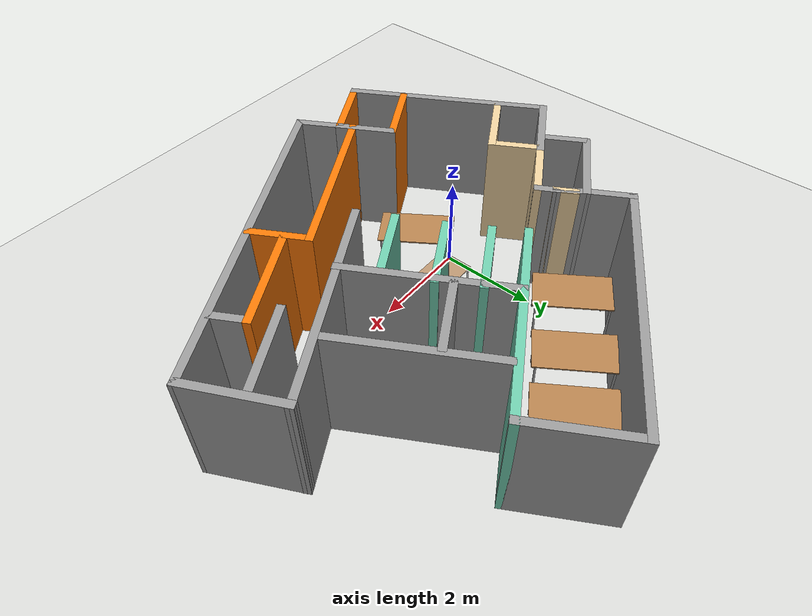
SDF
<sdf version="1.7">
 <world name="default">
  <light name="sun" type="directional">
   <pose>0 0 10 0 -0 0</pose>
   <diffuse>0.8 0.8 0.8 1</diffuse>
   <specular>0.2 0.2 0.2 1</specular>
   <attenuation>
    <range>1000</range>
    <constant>0.9</constant>
    <linear>0.01</linear>
    <quadratic>0.001</quadratic>
   </attenuation>
   <direction>-0.5 0.1 -0.9</direction>
   <spot><inner_angle>0</inner_angle><outer_angle>0</outer_angle><falloff>0</falloff></spot>
  </light>
  <model name="ground_plane">
   <static>1</static>
   <link name="link">
    <collision name="collision">
     <geometry><plane><normal>0 0 1</normal><size>100 100</size></plane></geometry>
     <surface>
      <contact><collide_bitmask>65535</collide_bitmask></contact>
      <friction><ode><mu>100</mu><mu2>50</mu2></ode></friction>
     </surface>
    </collision>
    <visual name="visual">
     <cast_shadows>0</cast_shadows>
     <geometry><plane><normal>0 0 1</normal><size>100 100</size></plane></geometry>
     <material>
      <script><uri>file://media/materials/scripts/gazebo.material</uri><name>Gazebo/Grey</name></script>
     </material>
    </visual>
   </link>
  </model>
  <gravity>0 0 -9.8</gravity>
  <magnetic_field>6e-06 2.3e-05 -4.2e-05</magnetic_field>
  <atmosphere type="adiabatic"/>
  <physics type="ode">
   <max_step_size>0.001</max_step_size>
   <real_time_factor>1</real_time_factor>
   <real_time_update_rate>1000</real_time_update_rate>
  </physics>
  <scene><ambient>0.4 0.4 0.4 1</ambient><background>0.7 0.7 0.7 1</background><shadows>1</shadows></scene>
  <spherical_coordinates>
   <surface_model>EARTH_WGS84</surface_model>
   <latitude_deg>0</latitude_deg>
   <longitude_deg>0</longitude_deg>
   <elevation>0</elevation>
   <heading_deg>0</heading_deg>
  </spherical_coordinates>
  <model name="Untitled">
   <pose>1.85566 1.13752 0 0 -0 0</pose>
   <link name="Wall_10">
    <collision name="Wall_10_Collision">
     <geometry><box><size>1.5 0.15 2.5</size></box></geometry>
     <pose>0 0 1.25 0 -0 0</pose>
    </collision>
    <visual name="Wall_10_Visual">
     <pose>0 0 1.25 0 -0 0</pose>
     <geometry><box><size>1.5 0.15 2.5</size></box></geometry>
     <material>
      <script><uri>file://media/materials/scripts/gazebo.material</uri><name>Gazebo/Grey</name></script>
      <ambient>0.996078 0.47451 0.0196078 1</ambient>
     </material>
     <meta><layer>0</layer></meta>
    </visual>
    <pose>-2.03214 -4.10363 0 0 -0 -2.61799</pose>
   </link>
   <link name="Wall_11">
    <collision name="Wall_11_Collision">
     <geometry><box><size>4.25 0.15 2.5</size></box></geometry>
     <pose>0 0 1.25 0 -0 0</pose>
    </collision>
    <visual name="Wall_11_Visual">
     <pose>0 0 1.25 0 -0 0</pose>
     <geometry><box><size>4.25 0.15 2.5</size></box></geometry>
     <material>
      <script><uri>file://media/materials/scripts/gazebo.material</uri><name>Gazebo/Grey</name></script>
      <ambient>0.533333 0.541176 0.521569 1</ambient>
     </material>
     <meta><layer>0</layer></meta>
    </visual>
    <pose>-3.64171 -2.66578 0 0 -0 2.0944</pose>
   </link>
   <link name="Wall_12">
    <collision name="Wall_12_Collision">
     <geometry><box><size>1.75 0.15 2.5</size></box></geometry>
     <pose>0 0 1.25 0 -0 0</pose>
    </collision>
    <visual name="Wall_12_Visual">
     <pose>0 0 1.25 0 -0 0</pose>
     <geometry><box><size>1.75 0.15 2.5</size></box></geometry>
     <material>
      <script><uri>file://media/materials/scripts/gazebo.material</uri><name>Gazebo/Grey</name></script>
      <ambient>0.533333 0.541176 0.521569 1</ambient>
     </material>
     <meta><layer>0</layer></meta>
    </visual>
    <pose>-3.97389 -0.490429 0 0 -0 0.523599</pose>
   </link>
   <link name="Wall_15">
    <collision name="Wall_15_Collision">
     <geometry><box><size>0.5 0.15 2.5</size></box></geometry>
     <pose>0 0 1.25 0 -0 0</pose>
    </collision>
    <visual name="Wall_15_Visual">
     <pose>0 0 1.25 0 -0 0</pose>
     <geometry><box><size>0.5 0.15 2.5</size></box></geometry>
     <material>
      <script><uri>file://media/materials/scripts/gazebo.material</uri><name>Gazebo/Grey</name></script>
      <ambient>0.921569 0.807843 0.615686 1</ambient>
     </material>
     <meta><layer>0</layer></meta>
    </visual>
    <pose>-2.59094 0.914234 0 0 -0 2.0944</pose>
   </link>
   <link name="Wall_18">
    <collision name="Wall_18_Collision">
     <geometry><box><size>0.5 0.15 2.5</size></box></geometry>
     <pose>0 0 1.25 0 -0 0</pose>
    </collision>
    <visual name="Wall_18_Visual">
     <pose>0 0 1.25 0 -0 0</pose>
     <geometry><box><size>0.5 0.15 2.5</size></box></geometry>
     <material>
      <script><uri>file://media/materials/scripts/gazebo.material</uri><name>Gazebo/Grey</name></script>
      <ambient>1 1 1 1</ambient>
     </material>
     <meta><layer>0</layer></meta>
    </visual>
    <pose>-2.41594 0.611125 0 0 -0 -1.0472</pose>
   </link>
   <link name="Wall_19">
    <collision name="Wall_19_Collision">
     <geometry><box><size>1.25 0.15 2.5</size></box></geometry>
     <pose>0 0 1.25 0 -0 0</pose>
    </collision>
    <visual name="Wall_19_Visual">
     <pose>0 0 1.25 0 -0 0</pose>
     <geometry><box><size>1.25 0.15 2.5</size></box></geometry>
     <material>
      <script><uri>file://media/materials/scripts/gazebo.material</uri><name>Gazebo/Grey</name></script>
      <ambient>0.921569 0.807843 0.615686 1</ambient>
     </material>
     <meta><layer>0</layer></meta>
    </visual>
    <pose>-2.80475 0.184571 0 0 -0 -2.61799</pose>
   </link>
   <link name="Wall_24">
    <collision name="Wall_24_Collision">
     <geometry><box><size>1.25 0.15 2.5</size></box></geometry>
     <pose>0 0 1.25 0 -0 0</pose>
    </collision>
    <visual name="Wall_24_Visual">
     <pose>0 0 1.25 0 -0 0</pose>
     <geometry><box><size>1.25 0.15 2.5</size></box></geometry>
     <material>
      <script><uri>file://media/materials/scripts/gazebo.material</uri><name>Gazebo/Grey</name></script>
      <ambient>1 1 1 1</ambient>
     </material>
     <meta><layer>0</layer></meta>
    </visual>
    <pose>-1.72257 -3.28982 0 0 -0 2.0944</pose>
   </link>
   <link name="Wall_25">
    <collision name="Wall_25_Collision">
     <geometry><box><size>1.5 0.15 2.5</size></box></geometry>
     <pose>0 0 1.25 0 -0 0</pose>
    </collision>
    <visual name="Wall_25_Visual">
     <pose>0 0 1.25 0 -0 0</pose>
     <geometry><box><size>1.5 0.15 2.5</size></box></geometry>
     <material>
      <script><uri>file://media/materials/scripts/gazebo.material</uri><name>Gazebo/Grey</name></script>
      <ambient>0.996078 0.47451 0.0196078 1</ambient>
     </material>
     <meta><layer>0</layer></meta>
    </visual>
    <pose>-2.58214 -3.15101 0 0 -0 -2.61799</pose>
   </link>
   <link name="Wall_27">
    <collision name="Wall_27_Collision">
     <geometry><box><size>1.5 0.15 2.5</size></box></geometry>
     <pose>0 0 1.25 0 -0 0</pose>
    </collision>
    <visual name="Wall_27_Visual">
     <pose>0 0 1.25 0 -0 0</pose>
     <geometry><box><size>1.5 0.15 2.5</size></box></geometry>
     <material>
      <script><uri>file://media/materials/scripts/gazebo.material</uri><name>Gazebo/Grey</name></script>
      <ambient>0.921569 0.807843 0.615686 1</ambient>
     </material>
     <meta><layer>0</layer></meta>
    </visual>
    <pose>-3.53505 -1.34466 0 0 -0 0.523599</pose>
   </link>
   <link name="Wall_28">
    <collision name="Wall_28_Collision">
     <geometry><box><size>1 0.15 2.5</size></box></geometry>
     <pose>0 0 1.25 0 -0 0</pose>
    </collision>
    <visual name="Wall_28_Visual">
     <pose>0 0 1.25 0 -0 0</pose>
     <geometry><box><size>1 0.15 2.5</size></box></geometry>
     <material>
      <script><uri>file://media/materials/scripts/gazebo.material</uri><name>Gazebo/Grey</name></script>
      <ambient>0.921569 0.807843 0.615686 1</ambient>
     </material>
     <meta><layer>0</layer></meta>
    </visual>
    <pose>-3.16298 -0.639103 0 0 -0 2.0944</pose>
   </link>
   <link name="Wall_30">
    <collision name="Wall_30_Collision">
     <geometry><box><size>1 0.15 2.5</size></box></geometry>
     <pose>0 0 1.25 0 -0 0</pose>
    </collision>
    <visual name="Wall_30_Visual">
     <pose>0 0 1.25 0 -0 0</pose>
     <geometry><box><size>1 0.15 2.5</size></box></geometry>
     <material>
      <script><uri>file://media/materials/scripts/gazebo.material</uri><name>Gazebo/Grey</name></script>
      <ambient>0.533333 0.541176 0.521569 1</ambient>
     </material>
     <meta><layer>0</layer></meta>
    </visual>
    <pose>-3.98826 0.048072 0 0 -0 2.0944</pose>
   </link>
   <link name="Wall_31">
    <collision name="Wall_31_Collision">
     <geometry><box><size>1.75 0.15 2.5</size></box></geometry>
     <pose>0 0 1.25 0 -0 0</pose>
    </collision>
    <visual name="Wall_31_Visual">
     <pose>0 0 1.25 0 -0 0</pose>
     <geometry><box><size>1.75 0.15 2.5</size></box></geometry>
     <material>
      <script><uri>file://media/materials/scripts/gazebo.material</uri><name>Gazebo/Grey</name></script>
      <ambient>0.533333 0.541176 0.521569 1</ambient>
     </material>
     <meta><layer>0</layer></meta>
    </visual>
    <pose>-3.50794 0.816133 0 0 -0 0.523599</pose>
   </link>
   <link name="Wall_35">
    <collision name="Wall_35_Collision">
     <geometry><box><size>1 0.15 2.5</size></box></geometry>
     <pose>0 0 1.25 0 -0 0</pose>
    </collision>
    <visual name="Wall_35_Visual">
     <pose>0 0 1.25 0 -0 0</pose>
     <geometry><box><size>1 0.15 2.5</size></box></geometry>
     <material>
      <script><uri>file://media/materials/scripts/gazebo.material</uri><name>Gazebo/Grey</name></script>
      <ambient>1 1 1 1</ambient>
     </material>
     <meta><layer>0</layer></meta>
    </visual>
    <pose>-3.02762 1.58419 0 0 -0 2.0944</pose>
   </link>
   <link name="Wall_43">
    <collision name="Wall_43_Collision">
     <geometry><box><size>0.700243 0.15 2.5</size></box></geometry>
     <pose>0 0 1.25 0 -0 0</pose>
    </collision>
    <visual name="Wall_43_Visual">
     <pose>0 0 1.25 0 -0 0</pose>
     <geometry><box><size>0.700243 0.15 2.5</size></box></geometry>
     <material>
      <script><uri>file://media/materials/scripts/gazebo.material</uri><name>Gazebo/Grey</name></script>
      <ambient>1 1 1 1</ambient>
     </material>
     <meta><layer>0</layer></meta>
    </visual>
    <pose>-2.65928 0.989406 0 0 -0 -0.968603</pose>
   </link>
   <link name="Wall_47">
    <collision name="Wall_47_Collision">
     <geometry><box><size>5.25 0.15 2.5</size></box></geometry>
     <pose>0 0 1.25 0 -0 0</pose>
    </collision>
    <visual name="Wall_47_Visual">
     <pose>0 0 1.25 0 -0 0</pose>
     <geometry><box><size>5.25 0.15 2.5</size></box></geometry>
     <material>
      <script><uri>file://media/materials/scripts/gazebo.material</uri><name>Gazebo/Grey</name></script>
      <ambient>0.533333 0.541176 0.521569 1</ambient>
     </material>
     <meta><layer>0</layer></meta>
    </visual>
    <pose>-1.03176 3.22725 0 0 -0 0.523599</pose>
   </link>
   <link name="Wall_48">
    <collision name="Wall_48_Collision">
     <geometry><box><size>2 0.15 2.5</size></box></geometry>
     <pose>0 0 1.25 0 -0 0</pose>
    </collision>
    <visual name="Wall_48_Visual">
     <pose>0 0 1.25 0 -0 0</pose>
     <geometry><box><size>2 0.15 2.5</size></box></geometry>
     <material>
      <script><uri>file://media/materials/scripts/gazebo.material</uri><name>Gazebo/Grey</name></script>
      <ambient>1 1 1 1</ambient>
     </material>
     <meta><layer>0</layer></meta>
    </visual>
    <pose>1.63911 3.70118 0 0 -0 -1.0472</pose>
   </link>
   <link name="Wall_49">
    <collision name="Wall_49_Collision">
     <geometry><box><size>4 0.15 2.5</size></box></geometry>
     <pose>0 0 1.25 0 -0 0</pose>
    </collision>
    <visual name="Wall_49_Visual">
     <pose>0 0 1.25 0 -0 0</pose>
     <geometry><box><size>4 0.15 2.5</size></box></geometry>
     <material>
      <script><uri>file://media/materials/scripts/gazebo.material</uri><name>Gazebo/Grey</name></script>
      <ambient>0.435294 0.796078 0.67451 1</ambient>
     </material>
     <meta><layer>0</layer></meta>
    </visual>
    <pose>0.434508 1.93761 0 0 -0 -2.61799</pose>
   </link>
   <link name="Wall_51">
    <collision name="Wall_51_Collision">
     <geometry><box><size>4.25 0.15 2.5</size></box></geometry>
     <pose>0 0 1.25 0 -0 0</pose>
    </collision>
    <visual name="Wall_51_Visual">
     <pose>0 0 1.25 0 -0 0</pose>
     <geometry><box><size>4.25 0.15 2.5</size></box></geometry>
     <material>
      <script><uri>file://media/materials/scripts/gazebo.material</uri><name>Gazebo/Grey</name></script>
      <ambient>0.533333 0.541176 0.521569 1</ambient>
     </material>
     <meta><layer>0</layer></meta>
    </visual>
    <pose>2.09276 -0.684571 0 0 -0 0.523599</pose>
   </link>
   <link name="Wall_53">
    <collision name="Wall_53_Collision">
     <geometry><box><size>1.91068 0.15 2.5</size></box></geometry>
     <pose>0 0 1.25 0 -0 0</pose>
    </collision>
    <visual name="Wall_53_Visual">
     <pose>0 0 1.25 0 -0 0</pose>
     <geometry><box><size>1.91068 0.15 2.5</size></box></geometry>
     <material>
      <script><uri>file://media/materials/scripts/gazebo.material</uri><name>Gazebo/Grey</name></script>
      <ambient>1 1 1 1</ambient>
     </material>
     <meta><layer>0</layer></meta>
    </visual>
    <pose>4.26743 -0.444138 0 0 -0 -1.1</pose>
   </link>
   <link name="Wall_55">
    <collision name="Wall_55_Collision">
     <geometry><box><size>3.25 0.15 2.5</size></box></geometry>
     <pose>0 0 1.25 0 -0 0</pose>
    </collision>
    <visual name="Wall_55_Visual">
     <pose>0 0 1.25 0 -0 0</pose>
     <geometry><box><size>3.25 0.15 2.5</size></box></geometry>
     <material>
      <script><uri>file://media/materials/scripts/gazebo.material</uri><name>Gazebo/Grey</name></script>
      <ambient>1 1 1 1</ambient>
     </material>
     <meta><layer>0</layer></meta>
    </visual>
    <pose>0.741911 0.308197 0 0 -0 -1.0472</pose>
   </link>
   <link name="Wall_61">
    <collision name="Wall_61_Collision">
     <geometry><box><size>1.5 0.15 2.5</size></box></geometry>
     <pose>0 0 1.25 0 -0 0</pose>
    </collision>
    <visual name="Wall_61_Visual">
     <pose>0 0 1.25 0 -0 0</pose>
     <geometry><box><size>1.5 0.15 2.5</size></box></geometry>
     <material>
      <script><uri>file://media/materials/scripts/gazebo.material</uri><name>Gazebo/Grey</name></script>
      <ambient>0.435294 0.796078 0.67451 1</ambient>
     </material>
     <meta><layer>0</layer></meta>
    </visual>
    <pose>0.128278 0.083636 0 0 -0 0.523599</pose>
   </link>
   <link name="Wall_63">
    <collision name="Wall_63_Collision">
     <geometry><box><size>1.5 0.15 2.5</size></box></geometry>
     <pose>0 0 1.25 0 -0 0</pose>
    </collision>
    <visual name="Wall_63_Visual">
     <pose>0 0 1.25 0 -0 0</pose>
     <geometry><box><size>1.5 0.15 2.5</size></box></geometry>
     <material>
      <script><uri>file://media/materials/scripts/gazebo.material</uri><name>Gazebo/Grey</name></script>
      <ambient>0.435294 0.796078 0.67451 1</ambient>
     </material>
     <meta><layer>0</layer></meta>
    </visual>
    <pose>0.551479 -0.736314 0 0 -0 0.523599</pose>
   </link>
   <link name="Wall_65">
    <collision name="Wall_65_Collision">
     <geometry><box><size>1.5 0.15 2.5</size></box></geometry>
     <pose>0 0 1.25 0 -0 0</pose>
    </collision>
    <visual name="Wall_65_Visual">
     <pose>0 0 1.25 0 -0 0</pose>
     <geometry><box><size>1.5 0.15 2.5</size></box></geometry>
     <material>
      <script><uri>file://media/materials/scripts/gazebo.material</uri><name>Gazebo/Grey</name></script>
      <ambient>0.435294 0.796078 0.67451 1</ambient>
     </material>
     <meta><layer>0</layer></meta>
    </visual>
    <pose>-0.281697 0.784561 0 0 -0 0.523599</pose>
   </link>
   <link name="Wall_68">
    <collision name="Wall_68_Collision">
     <geometry><box><size>1.5 0.15 2.5</size></box></geometry>
     <pose>0 0 1.25 0 -0 0</pose>
    </collision>
    <visual name="Wall_68_Visual">
     <pose>0 0 1.25 0 -0 0</pose>
     <geometry><box><size>1.5 0.15 2.5</size></box></geometry>
     <material>
      <script><uri>file://media/materials/scripts/gazebo.material</uri><name>Gazebo/Grey</name></script>
      <ambient>1 1 1 1</ambient>
     </material>
     <meta><layer>0</layer></meta>
    </visual>
    <pose>1.15983 1.03584 0 0 -0 0.523599</pose>
   </link>
   <link name="Wall_70">
    <collision name="Wall_70_Collision">
     <geometry><box><size>3 0.15 2.5</size></box></geometry>
     <pose>0 0 1.25 0 -0 0</pose>
    </collision>
    <visual name="Wall_70_Visual">
     <pose>0 0 1.25 0 -0 0</pose>
     <geometry><box><size>3 0.15 2.5</size></box></geometry>
     <material>
      <script><uri>file://media/materials/scripts/gazebo.material</uri><name>Gazebo/Grey</name></script>
      <ambient>0.533333 0.541176 0.521569 1</ambient>
     </material>
     <meta><layer>0</layer></meta>
    </visual>
    <pose>2.00191 1.0777 0 0 -0 -1.0472</pose>
   </link>
   <link name="Wall_72">
    <collision name="Wall_72_Collision">
     <geometry><box><size>1.75 0.15 2.5</size></box></geometry>
     <pose>0 0 1.25 0 -0 0</pose>
    </collision>
    <visual name="Wall_72_Visual">
     <pose>0 0 1.25 0 -0 0</pose>
     <geometry><box><size>1.75 0.15 2.5</size></box></geometry>
     <material>
      <script><uri>file://media/materials/scripts/gazebo.material</uri><name>Gazebo/Grey</name></script>
      <ambient>1 1 1 1</ambient>
     </material>
     <meta><layer>0</layer></meta>
    </visual>
    <pose>3.43698 -0.673814 0 0 -0 0.523599</pose>
   </link>
   <link name="Wall_74">
    <collision name="Wall_74_Collision">
     <geometry><box><size>1.25 0.15 2.5</size></box></geometry>
     <pose>0 0 1.25 0 -0 0</pose>
    </collision>
    <visual name="Wall_74_Visual">
     <pose>0 0 1.25 0 -0 0</pose>
     <geometry><box><size>1.25 0.15 2.5</size></box></geometry>
     <material>
      <script><uri>file://media/materials/scripts/gazebo.material</uri><name>Gazebo/Grey</name></script>
      <ambient>0.996078 0.47451 0.0196078 1</ambient>
     </material>
     <meta><layer>0</layer></meta>
    </visual>
    <pose>1.59086 -2.3304 0 0 -0 -1.0472</pose>
   </link>
   <link name="Wall_76">
    <collision name="Wall_76_Collision">
     <geometry><box><size>3.5 0.15 2.5</size></box></geometry>
     <pose>0 0 1.25 0 -0 0</pose>
    </collision>
    <visual name="Wall_76_Visual">
     <pose>0 0 1.25 0 -0 0</pose>
     <geometry><box><size>3.5 0.15 2.5</size></box></geometry>
     <material>
      <script><uri>file://media/materials/scripts/gazebo.material</uri><name>Gazebo/Grey</name></script>
      <ambient>0.996078 0.47451 0.0196078 1</ambient>
     </material>
     <meta><layer>0</layer></meta>
    </visual>
    <pose>-0.134731 -2.69159 0 0 -0 -2.61799</pose>
   </link>
   <link name="Wall_78">
    <collision name="Wall_78_Collision">
     <geometry><box><size>2 0.15 2.5</size></box></geometry>
     <pose>0 0 1.25 0 -0 0</pose>
    </collision>
    <visual name="Wall_78_Visual">
     <pose>0 0 1.25 0 -0 0</pose>
     <geometry><box><size>2 0.15 2.5</size></box></geometry>
     <material>
      <script><uri>file://media/materials/scripts/gazebo.material</uri><name>Gazebo/Grey</name></script>
      <ambient>0.996078 0.47451 0.0196078 1</ambient>
     </material>
     <meta><layer>0</layer></meta>
    </visual>
    <pose>2.42111 -1.74866 0 0 -0 0.523599</pose>
   </link>
   <link name="Wall_79">
    <collision name="Wall_79_Collision">
     <geometry><box><size>0.75 0.15 2.5</size></box></geometry>
     <pose>0 0 1.25 0 -0 0</pose>
    </collision>
    <visual name="Wall_79_Visual">
     <pose>0 0 1.25 0 -0 0</pose>
     <geometry><box><size>0.75 0.15 2.5</size></box></geometry>
     <material>
      <script><uri>file://media/materials/scripts/gazebo.material</uri><name>Gazebo/Grey</name></script>
      <ambient>1 1 1 1</ambient>
     </material>
     <meta><layer>0</layer></meta>
    </visual>
    <pose>3.37218 -1.54597 0 0 -0 -1.0472</pose>
   </link>
   <link name="Wall_8">
    <collision name="Wall_8_Collision">
     <geometry><box><size>6.71388 0.15 2.5</size></box></geometry>
     <pose>0 0 1.25 0 -0 0</pose>
    </collision>
    <visual name="Wall_8_Visual">
     <pose>0 0 1.25 0 -0 0</pose>
     <geometry><box><size>6.71388 0.15 2.5</size></box></geometry>
     <material>
      <script><uri>file://media/materials/scripts/gazebo.material</uri><name>Gazebo/Grey</name></script>
      <ambient>0.533333 0.541176 0.521569 1</ambient>
     </material>
     <meta><layer>0</layer></meta>
    </visual>
    <pose>1.82209 -2.86548 0 0 -0 -2.61947</pose>
   </link>
   <link name="Wall_9">
    <collision name="Wall_9_Collision">
     <geometry><box><size>1 0.15 2.5</size></box></geometry>
     <pose>0 0 1.25 0 -0 0</pose>
    </collision>
    <visual name="Wall_9_Visual">
     <pose>0 0 1.25 0 -0 0</pose>
     <geometry><box><size>1 0.15 2.5</size></box></geometry>
     <material>
      <script><uri>file://media/materials/scripts/gazebo.material</uri><name>Gazebo/Grey</name></script>
      <ambient>1 1 1 1</ambient>
     </material>
     <meta><layer>0</layer></meta>
    </visual>
    <pose>-1.23507 -4.13419 0 0 -0 2.0944</pose>
   </link>
   <static>1</static>
  </model>
  <model name="table">
   <static>1</static>
   <link name="link">
    <collision name="surface">
     <pose>0 0 1 0 -0 0</pose>
     <geometry><box><size>1.5 0.8 0.03</size></box></geometry>
     <surface><friction><ode><mu>0.6</mu><mu2>0.6</mu2></ode></friction></surface>
    </collision>
    <visual name="visual1">
     <pose>0 0 1 0 -0 0</pose>
     <geometry><box><size>1.5 0.8 0.03</size></box></geometry>
     <material>
      <script><uri>file://media/materials/scripts/gazebo.material</uri><name>Gazebo/Wood</name></script>
     </material>
    </visual>
    <collision name="front_left_leg">
     <pose>0.68 0.38 0.5 0 -0 0</pose>
     <geometry><cylinder><radius>0.02</radius><length>1</length></cylinder></geometry>
    </collision>
    <visual name="front_left_leg">
     <pose>0.68 0.38 0.5 0 -0 0</pose>
     <geometry><cylinder><radius>0.02</radius><length>1</length></cylinder></geometry>
     <material>
      <script><uri>file://media/materials/scripts/gazebo.material</uri><name>Gazebo/Grey</name></script>
     </material>
    </visual>
    <collision name="front_right_leg">
     <pose>0.68 -0.38 0.5 0 -0 0</pose>
     <geometry><cylinder><radius>0.02</radius><length>1</length></cylinder></geometry>
    </collision>
    <visual name="front_right_leg">
     <pose>0.68 -0.38 0.5 0 -0 0</pose>
     <geometry><cylinder><radius>0.02</radius><length>1</length></cylinder></geometry>
     <material>
      <script><uri>file://media/materials/scripts/gazebo.material</uri><name>Gazebo/Grey</name></script>
     </material>
    </visual>
    <collision name="back_right_leg">
     <pose>-0.68 -0.38 0.5 0 -0 0</pose>
     <geometry><cylinder><radius>0.02</radius><length>1</length></cylinder></geometry>
    </collision>
    <visual name="back_right_leg">
     <pose>-0.68 -0.38 0.5 0 -0 0</pose>
     <geometry><cylinder><radius>0.02</radius><length>1</length></cylinder></geometry>
     <material>
      <script><uri>file://media/materials/scripts/gazebo.material</uri><name>Gazebo/Grey</name></script>
     </material>
    </visual>
    <collision name="back_left_leg">
     <pose>-0.68 0.38 0.5 0 -0 0</pose>
     <geometry><cylinder><radius>0.02</radius><length>1</length></cylinder></geometry>
    </collision>
    <visual name="back_left_leg">
     <pose>-0.68 0.38 0.5 0 -0 0</pose>
     <geometry><cylinder><radius>0.02</radius><length>1</length></cylinder></geometry>
     <material>
      <script><uri>file://media/materials/scripts/gazebo.material</uri><name>Gazebo/Grey</name></script>
     </material>
    </visual>
   </link>
   <pose>-0.56272 -1.10594 -3.20251 0 -0 0</pose>
  </model>
  <model name="table_0">
   <static>1</static>
   <link name="link">
    <collision name="surface">
     <pose>0 0 1 0 -0 0</pose>
     <geometry><box><size>1.5 0.8 0.03</size></box></geometry>
     <surface><friction><ode><mu>0.6</mu><mu2>0.6</mu2></ode></friction></surface>
    </collision>
    <visual name="visual1">
     <pose>0 0 1 0 -0 0</pose>
     <geometry><box><size>1.5 0.8 0.03</size></box></geometry>
     <material>
      <script><uri>file://media/materials/scripts/gazebo.material</uri><name>Gazebo/Wood</name></script>
     </material>
    </visual>
    <collision name="front_left_leg">
     <pose>0.68 0.38 0.5 0 -0 0</pose>
     <geometry><cylinder><radius>0.02</radius><length>1</length></cylinder></geometry>
    </collision>
    <visual name="front_left_leg">
     <pose>0.68 0.38 0.5 0 -0 0</pose>
     <geometry><cylinder><radius>0.02</radius><length>1</length></cylinder></geometry>
     <material>
      <script><uri>file://media/materials/scripts/gazebo.material</uri><name>Gazebo/Grey</name></script>
     </material>
    </visual>
    <collision name="front_right_leg">
     <pose>0.68 -0.38 0.5 0 -0 0</pose>
     <geometry><cylinder><radius>0.02</radius><length>1</length></cylinder></geometry>
    </collision>
    <visual name="front_right_leg">
     <pose>0.68 -0.38 0.5 0 -0 0</pose>
     <geometry><cylinder><radius>0.02</radius><length>1</length></cylinder></geometry>
     <material>
      <script><uri>file://media/materials/scripts/gazebo.material</uri><name>Gazebo/Grey</name></script>
     </material>
    </visual>
    <collision name="back_right_leg">
     <pose>-0.68 -0.38 0.5 0 -0 0</pose>
     <geometry><cylinder><radius>0.02</radius><length>1</length></cylinder></geometry>
    </collision>
    <visual name="back_right_leg">
     <pose>-0.68 -0.38 0.5 0 -0 0</pose>
     <geometry><cylinder><radius>0.02</radius><length>1</length></cylinder></geometry>
     <material>
      <script><uri>file://media/materials/scripts/gazebo.material</uri><name>Gazebo/Grey</name></script>
     </material>
    </visual>
    <collision name="back_left_leg">
     <pose>-0.68 0.38 0.5 0 -0 0</pose>
     <geometry><cylinder><radius>0.02</radius><length>1</length></cylinder></geometry>
    </collision>
    <visual name="back_left_leg">
     <pose>-0.68 0.38 0.5 0 -0 0</pose>
     <geometry><cylinder><radius>0.02</radius><length>1</length></cylinder></geometry>
     <material>
      <script><uri>file://media/materials/scripts/gazebo.material</uri><name>Gazebo/Grey</name></script>
     </material>
    </visual>
   </link>
   <pose>0.185856 -0.201972 -1.61268 0 -0 0</pose>
  </model>
  <model name="table_1">
   <static>1</static>
   <link name="link">
    <collision name="surface">
     <pose>0 0 1 0 -0 0</pose>
     <geometry><box><size>1.5 0.8 0.03</size></box></geometry>
     <surface><friction><ode><mu>0.6</mu><mu2>0.6</mu2></ode></friction></surface>
    </collision>
    <visual name="visual1">
     <pose>0 0 1 0 -0 0</pose>
     <geometry><box><size>1.5 0.8 0.03</size></box></geometry>
     <material>
      <script><uri>file://media/materials/scripts/gazebo.material</uri><name>Gazebo/Wood</name></script>
     </material>
    </visual>
    <collision name="front_left_leg">
     <pose>0.68 0.38 0.5 0 -0 0</pose>
     <geometry><cylinder><radius>0.02</radius><length>1</length></cylinder></geometry>
    </collision>
    <visual name="front_left_leg">
     <pose>0.68 0.38 0.5 0 -0 0</pose>
     <geometry><cylinder><radius>0.02</radius><length>1</length></cylinder></geometry>
     <material>
      <script><uri>file://media/materials/scripts/gazebo.material</uri><name>Gazebo/Grey</name></script>
     </material>
    </visual>
    <collision name="front_right_leg">
     <pose>0.68 -0.38 0.5 0 -0 0</pose>
     <geometry><cylinder><radius>0.02</radius><length>1</length></cylinder></geometry>
    </collision>
    <visual name="front_right_leg">
     <pose>0.68 -0.38 0.5 0 -0 0</pose>
     <geometry><cylinder><radius>0.02</radius><length>1</length></cylinder></geometry>
     <material>
      <script><uri>file://media/materials/scripts/gazebo.material</uri><name>Gazebo/Grey</name></script>
     </material>
    </visual>
    <collision name="back_right_leg">
     <pose>-0.68 -0.38 0.5 0 -0 0</pose>
     <geometry><cylinder><radius>0.02</radius><length>1</length></cylinder></geometry>
    </collision>
    <visual name="back_right_leg">
     <pose>-0.68 -0.38 0.5 0 -0 0</pose>
     <geometry><cylinder><radius>0.02</radius><length>1</length></cylinder></geometry>
     <material>
      <script><uri>file://media/materials/scripts/gazebo.material</uri><name>Gazebo/Grey</name></script>
     </material>
    </visual>
    <collision name="back_left_leg">
     <pose>-0.68 0.38 0.5 0 -0 0</pose>
     <geometry><cylinder><radius>0.02</radius><length>1</length></cylinder></geometry>
    </collision>
    <visual name="back_left_leg">
     <pose>-0.68 0.38 0.5 0 -0 0</pose>
     <geometry><cylinder><radius>0.02</radius><length>1</length></cylinder></geometry>
     <material>
      <script><uri>file://media/materials/scripts/gazebo.material</uri><name>Gazebo/Grey</name></script>
     </material>
    </visual>
   </link>
   <pose>-0.010099 2.91229 0 -0.055365 0.035003 -1.00758</pose>
  </model>
  <model name="table_1_clone">
   <static>1</static>
   <link name="link">
    <collision name="surface">
     <pose>0 0 1 0 -0 0</pose>
     <geometry><box><size>1.5 0.8 0.03</size></box></geometry>
     <surface><friction><ode><mu>0.6</mu><mu2>0.6</mu2></ode></friction></surface>
    </collision>
    <visual name="visual1">
     <pose>0 0 1 0 -0 0</pose>
     <geometry><box><size>1.5 0.8 0.03</size></box></geometry>
     <material>
      <script><uri>file://media/materials/scripts/gazebo.material</uri><name>Gazebo/Wood</name></script>
     </material>
    </visual>
    <collision name="front_left_leg">
     <pose>0.68 0.38 0.5 0 -0 0</pose>
     <geometry><cylinder><radius>0.02</radius><length>1</length></cylinder></geometry>
    </collision>
    <visual name="front_left_leg">
     <pose>0.68 0.38 0.5 0 -0 0</pose>
     <geometry><cylinder><radius>0.02</radius><length>1</length></cylinder></geometry>
     <material>
      <script><uri>file://media/materials/scripts/gazebo.material</uri><name>Gazebo/Grey</name></script>
     </material>
    </visual>
    <collision name="front_right_leg">
     <pose>0.68 -0.38 0.5 0 -0 0</pose>
     <geometry><cylinder><radius>0.02</radius><length>1</length></cylinder></geometry>
    </collision>
    <visual name="front_right_leg">
     <pose>0.68 -0.38 0.5 0 -0 0</pose>
     <geometry><cylinder><radius>0.02</radius><length>1</length></cylinder></geometry>
     <material>
      <script><uri>file://media/materials/scripts/gazebo.material</uri><name>Gazebo/Grey</name></script>
     </material>
    </visual>
    <collision name="back_right_leg">
     <pose>-0.68 -0.38 0.5 0 -0 0</pose>
     <geometry><cylinder><radius>0.02</radius><length>1</length></cylinder></geometry>
    </collision>
    <visual name="back_right_leg">
     <pose>-0.68 -0.38 0.5 0 -0 0</pose>
     <geometry><cylinder><radius>0.02</radius><length>1</length></cylinder></geometry>
     <material>
      <script><uri>file://media/materials/scripts/gazebo.material</uri><name>Gazebo/Grey</name></script>
     </material>
    </visual>
    <collision name="back_left_leg">
     <pose>-0.68 0.38 0.5 0 -0 0</pose>
     <geometry><cylinder><radius>0.02</radius><length>1</length></cylinder></geometry>
    </collision>
    <visual name="back_left_leg">
     <pose>-0.68 0.38 0.5 0 -0 0</pose>
     <geometry><cylinder><radius>0.02</radius><length>1</length></cylinder></geometry>
     <material>
      <script><uri>file://media/materials/scripts/gazebo.material</uri><name>Gazebo/Grey</name></script>
     </material>
    </visual>
   </link>
   <pose>1.19003 3.66727 0 -0.055365 0.035003 -1.00758</pose>
  </model>
  <model name="table_1_clone_0">
   <static>1</static>
   <link name="link">
    <collision name="surface">
     <pose>0 0 1 0 -0 0</pose>
     <geometry><box><size>1.5 0.8 0.03</size></box></geometry>
     <surface><friction><ode><mu>0.6</mu><mu2>0.6</mu2></ode></friction></surface>
    </collision>
    <visual name="visual1">
     <pose>0 0 1 0 -0 0</pose>
     <geometry><box><size>1.5 0.8 0.03</size></box></geometry>
     <material>
      <script><uri>file://media/materials/scripts/gazebo.material</uri><name>Gazebo/Wood</name></script>
     </material>
    </visual>
    <collision name="front_left_leg">
     <pose>0.68 0.38 0.5 0 -0 0</pose>
     <geometry><cylinder><radius>0.02</radius><length>1</length></cylinder></geometry>
    </collision>
    <visual name="front_left_leg">
     <pose>0.68 0.38 0.5 0 -0 0</pose>
     <geometry><cylinder><radius>0.02</radius><length>1</length></cylinder></geometry>
     <material>
      <script><uri>file://media/materials/scripts/gazebo.material</uri><name>Gazebo/Grey</name></script>
     </material>
    </visual>
    <collision name="front_right_leg">
     <pose>0.68 -0.38 0.5 0 -0 0</pose>
     <geometry><cylinder><radius>0.02</radius><length>1</length></cylinder></geometry>
    </collision>
    <visual name="front_right_leg">
     <pose>0.68 -0.38 0.5 0 -0 0</pose>
     <geometry><cylinder><radius>0.02</radius><length>1</length></cylinder></geometry>
     <material>
      <script><uri>file://media/materials/scripts/gazebo.material</uri><name>Gazebo/Grey</name></script>
     </material>
    </visual>
    <collision name="back_right_leg">
     <pose>-0.68 -0.38 0.5 0 -0 0</pose>
     <geometry><cylinder><radius>0.02</radius><length>1</length></cylinder></geometry>
    </collision>
    <visual name="back_right_leg">
     <pose>-0.68 -0.38 0.5 0 -0 0</pose>
     <geometry><cylinder><radius>0.02</radius><length>1</length></cylinder></geometry>
     <material>
      <script><uri>file://media/materials/scripts/gazebo.material</uri><name>Gazebo/Grey</name></script>
     </material>
    </visual>
    <collision name="back_left_leg">
     <pose>-0.68 0.38 0.5 0 -0 0</pose>
     <geometry><cylinder><radius>0.02</radius><length>1</length></cylinder></geometry>
    </collision>
    <visual name="back_left_leg">
     <pose>-0.68 0.38 0.5 0 -0 0</pose>
     <geometry><cylinder><radius>0.02</radius><length>1</length></cylinder></geometry>
     <material>
      <script><uri>file://media/materials/scripts/gazebo.material</uri><name>Gazebo/Grey</name></script>
     </material>
    </visual>
   </link>
   <pose>2.19032 4.25695 0 -0.055365 0.035003 -1.00758</pose>
  </model>
  <model name="table_1_clone_1">
   <static>1</static>
   <link name="link">
    <collision name="surface">
     <pose>0 0 1 0 -0 0</pose>
     <geometry><box><size>1.5 0.8 0.03</size></box></geometry>
     <surface><friction><ode><mu>0.6</mu><mu2>0.6</mu2></ode></friction></surface>
    </collision>
    <visual name="visual1">
     <pose>0 0 1 0 -0 0</pose>
     <geometry><box><size>1.5 0.8 0.03</size></box></geometry>
     <material>
      <script><uri>file://media/materials/scripts/gazebo.material</uri><name>Gazebo/Wood</name></script>
     </material>
    </visual>
    <collision name="front_left_leg">
     <pose>0.68 0.38 0.5 0 -0 0</pose>
     <geometry><cylinder><radius>0.02</radius><length>1</length></cylinder></geometry>
    </collision>
    <visual name="front_left_leg">
     <pose>0.68 0.38 0.5 0 -0 0</pose>
     <geometry><cylinder><radius>0.02</radius><length>1</length></cylinder></geometry>
     <material>
      <script><uri>file://media/materials/scripts/gazebo.material</uri><name>Gazebo/Grey</name></script>
     </material>
    </visual>
    <collision name="front_right_leg">
     <pose>0.68 -0.38 0.5 0 -0 0</pose>
     <geometry><cylinder><radius>0.02</radius><length>1</length></cylinder></geometry>
    </collision>
    <visual name="front_right_leg">
     <pose>0.68 -0.38 0.5 0 -0 0</pose>
     <geometry><cylinder><radius>0.02</radius><length>1</length></cylinder></geometry>
     <material>
      <script><uri>file://media/materials/scripts/gazebo.material</uri><name>Gazebo/Grey</name></script>
     </material>
    </visual>
    <collision name="back_right_leg">
     <pose>-0.68 -0.38 0.5 0 -0 0</pose>
     <geometry><cylinder><radius>0.02</radius><length>1</length></cylinder></geometry>
    </collision>
    <visual name="back_right_leg">
     <pose>-0.68 -0.38 0.5 0 -0 0</pose>
     <geometry><cylinder><radius>0.02</radius><length>1</length></cylinder></geometry>
     <material>
      <script><uri>file://media/materials/scripts/gazebo.material</uri><name>Gazebo/Grey</name></script>
     </material>
    </visual>
    <collision name="back_left_leg">
     <pose>-0.68 0.38 0.5 0 -0 0</pose>
     <geometry><cylinder><radius>0.02</radius><length>1</length></cylinder></geometry>
    </collision>
    <visual name="back_left_leg">
     <pose>-0.68 0.38 0.5 0 -0 0</pose>
     <geometry><cylinder><radius>0.02</radius><length>1</length></cylinder></geometry>
     <material>
      <script><uri>file://media/materials/scripts/gazebo.material</uri><name>Gazebo/Grey</name></script>
     </material>
    </visual>
   </link>
   <pose>2.98426 4.65715 0 -0.055365 0.035003 -1.00758</pose>
  </model>
  <model name="table_1_clone_2">
   <static>1</static>
   <link name="link">
    <collision name="surface">
     <pose>0 0 1 0 -0 0</pose>
     <geometry><box><size>1.5 0.8 0.03</size></box></geometry>
     <surface><friction><ode><mu>0.6</mu><mu2>0.6</mu2></ode></friction></surface>
    </collision>
    <visual name="visual1">
     <pose>0 0 1 0 -0 0</pose>
     <geometry><box><size>1.5 0.8 0.03</size></box></geometry>
     <material>
      <script><uri>file://media/materials/scripts/gazebo.material</uri><name>Gazebo/Wood</name></script>
     </material>
    </visual>
    <collision name="front_left_leg">
     <pose>0.68 0.38 0.5 0 -0 0</pose>
     <geometry><cylinder><radius>0.02</radius><length>1</length></cylinder></geometry>
    </collision>
    <visual name="front_left_leg">
     <pose>0.68 0.38 0.5 0 -0 0</pose>
     <geometry><cylinder><radius>0.02</radius><length>1</length></cylinder></geometry>
     <material>
      <script><uri>file://media/materials/scripts/gazebo.material</uri><name>Gazebo/Grey</name></script>
     </material>
    </visual>
    <collision name="front_right_leg">
     <pose>0.68 -0.38 0.5 0 -0 0</pose>
     <geometry><cylinder><radius>0.02</radius><length>1</length></cylinder></geometry>
    </collision>
    <visual name="front_right_leg">
     <pose>0.68 -0.38 0.5 0 -0 0</pose>
     <geometry><cylinder><radius>0.02</radius><length>1</length></cylinder></geometry>
     <material>
      <script><uri>file://media/materials/scripts/gazebo.material</uri><name>Gazebo/Grey</name></script>
     </material>
    </visual>
    <collision name="back_right_leg">
     <pose>-0.68 -0.38 0.5 0 -0 0</pose>
     <geometry><cylinder><radius>0.02</radius><length>1</length></cylinder></geometry>
    </collision>
    <visual name="back_right_leg">
     <pose>-0.68 -0.38 0.5 0 -0 0</pose>
     <geometry><cylinder><radius>0.02</radius><length>1</length></cylinder></geometry>
     <material>
      <script><uri>file://media/materials/scripts/gazebo.material</uri><name>Gazebo/Grey</name></script>
     </material>
    </visual>
    <collision name="back_left_leg">
     <pose>-0.68 0.38 0.5 0 -0 0</pose>
     <geometry><cylinder><radius>0.02</radius><length>1</length></cylinder></geometry>
    </collision>
    <visual name="back_left_leg">
     <pose>-0.68 0.38 0.5 0 -0 0</pose>
     <geometry><cylinder><radius>0.02</radius><length>1</length></cylinder></geometry>
     <material>
      <script><uri>file://media/materials/scripts/gazebo.material</uri><name>Gazebo/Grey</name></script>
     </material>
    </visual>
   </link>
   <pose>0.495092 -0.466916 0 -0.055365 0.035003 -1.00758</pose>
  </model>
 </world>
</sdf>
